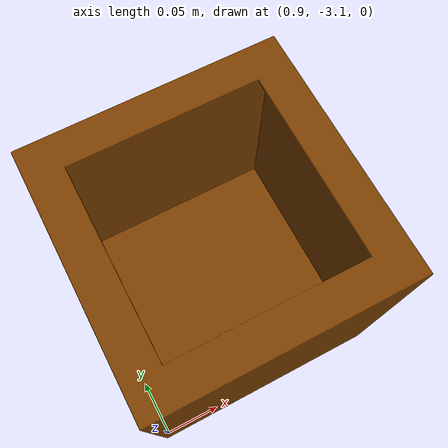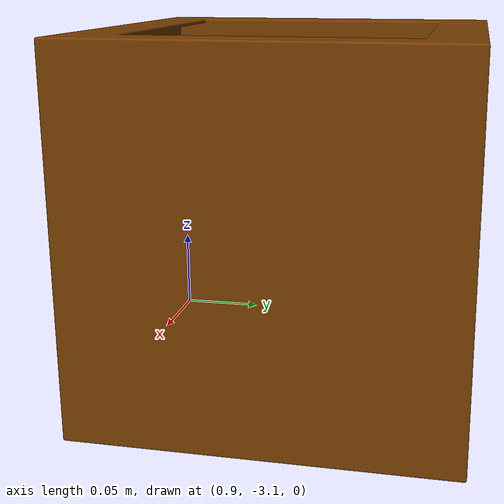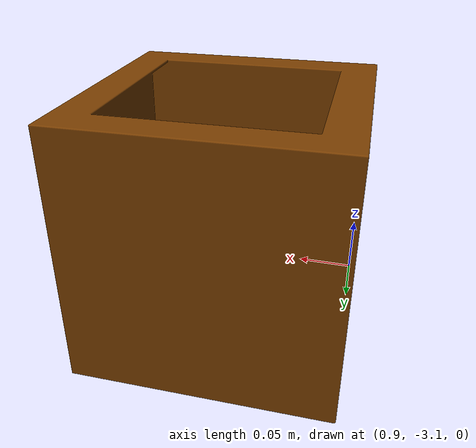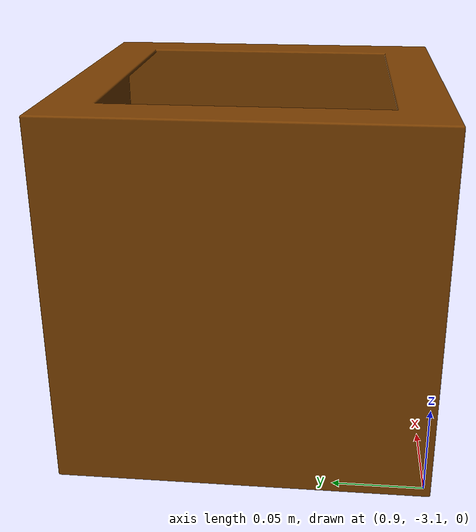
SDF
<?xml version="1.0"?>
<sdf version="1.6">
  <model name='yellow_box'>
    <link name='link'>
      <visual name='visual'>
        <geometry>
          <mesh>
            <uri>model://yellow_box/meshes/yellow_box.dae</uri>
          </mesh>
        </geometry>
      </visual>
      <collision name='collision'>
        <geometry>
          <mesh>
            <uri>model://yellow_box/meshes/yellow_box.dae</uri>
          </mesh>
        </geometry>
      </collision>
      <pose>0 0 0 0 0 0</pose>
      <inertial>
        <pose>0 0 0 0 0 0</pose>
        <mass>1</mass>
        <inertia>
          <ixx>1</ixx>
          <ixy>0</ixy>
          <ixz>0</ixz>
          <iyy>1</iyy>
          <iyz>0</iyz>
          <izz>1</izz>
        </inertia>
      </inertial>
      <enable_wind>false</enable_wind>
    </link>
    <pose>1 -3 0.1004 0 0 0</pose>
    <static>false</static>
    <self_collide>false</self_collide>
  </model>
</sdf>
